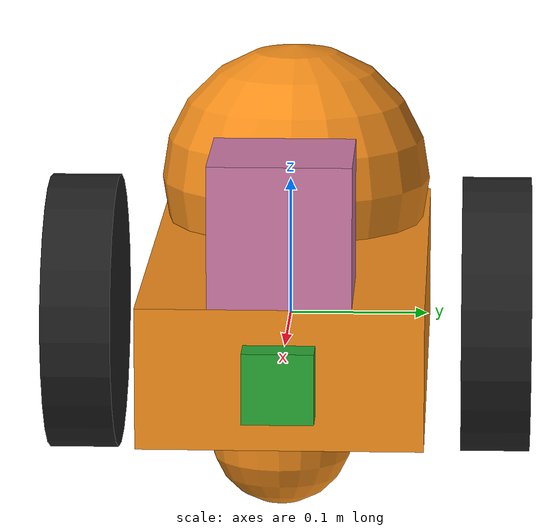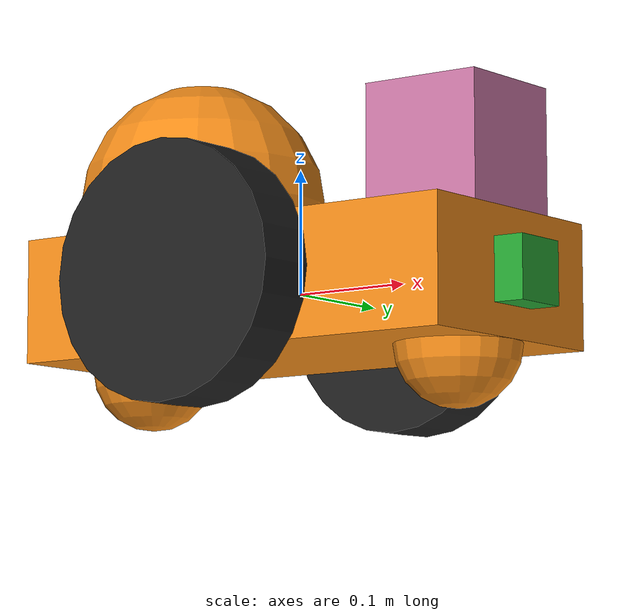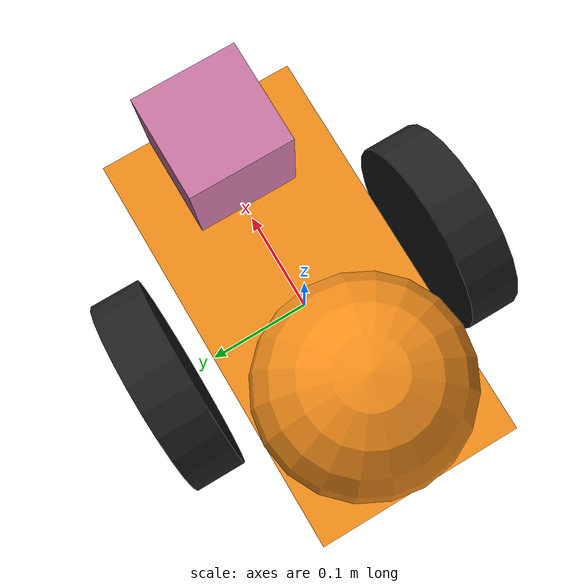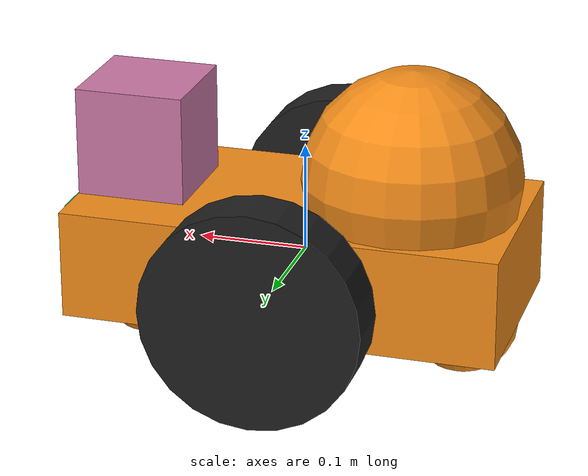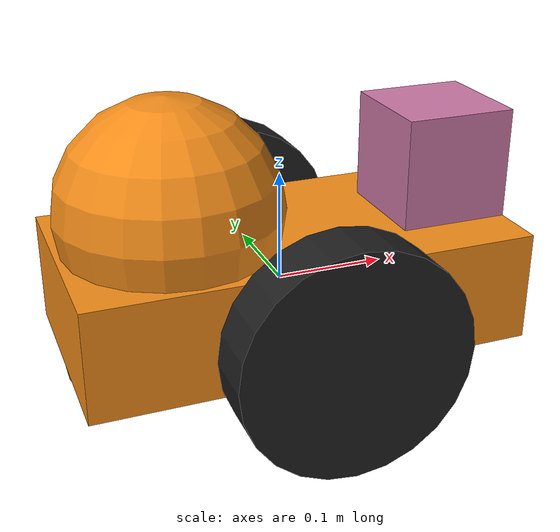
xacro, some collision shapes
<?xml version="1.0"?>
<robot name="my_robot"
  xmlns:xacro="http://www.ros.org/wiki/xacro">

  <xacro:include filename="$(find my_robot)/urdf/my_robot.gazebo" />

  <link name="robot_footprint">
  </link>

  <joint name="robot_footprint_joint" type="fixed">
    <origin xyz="0 0 0" rpy="0 0 0" />
    <parent link="robot_footprint" />
    <child link="chassis" />
  </joint>

  <link name='chassis'>
    <pose>0 0 0.1 0 0 0</pose>

    <inertial>
      <mass value="15.0" />
      <origin xyz="0.0 0 0" rpy=" 0 0 0" />
      <inertia ixx="0.1" ixy="0" ixz="0" iyy="0.1" iyz="0" izz="0.1" />
    </inertial>

    <collision name='collision'>
      <origin xyz="0 0 0" rpy=" 0 0 0" />
      <geometry>
        <box size=".4 .2 .1" />
      </geometry>
    </collision>

    <visual name='chassis_visual'>
      <origin xyz="0 0 0" rpy=" 0 0 0" />
      <geometry>
        <box size=".4 .2 .1" />
      </geometry>
    </visual>

    <collision name='back_caster_collision'>
      <origin xyz="-0.15 0 -0.05" rpy=" 0 0 0" />
      <geometry>
        <sphere radius="0.0499" />
      </geometry>
    </collision>

    <visual name='back_caster_visual'>
      <origin xyz="-0.15 0 -0.05" rpy=" 0 0 0" />
      <geometry>
        <sphere radius="0.05" />
      </geometry>
    </visual>

    <collision name='front_caster_collision'>
      <origin xyz="0.15 0 -0.05" rpy=" 0 0 0" />
      <geometry>
        <sphere radius="0.0499" />
      </geometry>
    </collision>

    <visual name='front_caster_visual'>
      <origin xyz="0.15 0 -0.05" rpy=" 0 0 0" />
      <geometry>
        <sphere radius="0.05" />
      </geometry>
    </visual>

    <collision name='top_caster_collision'>
      <origin xyz="-0.1 0 0.08" rpy=" 0 0 0" />
      <geometry>
        <sphere radius="0.1" />
      </geometry>
    </collision>

    <visual name='top_caster_visual'>
      <origin xyz="-0.1 0 0.08" rpy=" 0 0 0" />
      <geometry>
        <sphere radius="0.1" />
      </geometry>
    </visual>

  </link>

  <!-- left wheel -->

  <joint type="continuous" name="left_wheel_hinge">
    <origin xyz="0 0.15 0" rpy="0 0 0" />
    <child link="left_wheel" />
    <parent link="chassis" />
    <axis xyz="0 1 0" rpy="0 0 0" />
    <limit effort="10000" velocity="1000" />
    <dynamics damping="1.0" friction="1.0" />
  </joint>

  <link name="left_wheel">
    <inertial>
      <mass value="5.0" />
      <origin xyz="0 0 0" rpy="0 1.5707 1.5707" />
      <inertia ixx="0.1" ixy="0" ixz="0" iyy="0.1" iyz="0" izz="0.1" />
    </inertial>
    <collision name='collision'>
      <origin xyz="0 0 0" rpy=" 0 1.5707 1.5707" />
      <geometry>
        <cylinder radius="0.1" length="0.05" />
      </geometry>
    </collision>
    <visual name="left_wheel_visual">
      <origin xyz="0 0 0" rpy="0 1.5707 1.5707" />
      <geometry>
        <cylinder radius="0.1" length="0.05" />
      </geometry>
    </visual>
  </link>

  <!-- right wheel -->

  <joint type="continuous" name="right_wheel_hinge">
    <origin xyz="0 -0.15 0" rpy="0 0 0" />
    <child link="right_wheel" />
    <parent link="chassis" />
    <axis xyz="0 1 0" rpy="0 0 0" />
    <limit effort="10000" velocity="1000" />
    <dynamics damping="1.0" friction="1.0" />
  </joint>

  <link name="right_wheel">
    <inertial>
      <mass value="5.0" />
      <origin xyz="0.0 0 0" rpy=" 0 1.5707 1.5707" />
      <inertia ixx="0.1" ixy="0" ixz="0" iyy="0.1" iyz="0" izz="0.1" />
    </inertial>
    <collision name='collision'>
      <origin xyz="0 0 0" rpy=" 0 1.5707 1.5707" />
      <geometry>
        <cylinder radius="0.1" length="0.05" />
      </geometry>
    </collision>
    <visual name="right_wheel_visual">
      <origin xyz="0 0 0" rpy="0 1.5707 1.5707" />
      <geometry>
        <cylinder radius="0.1" length="0.05" />
      </geometry>
    </visual>
  </link>

  <!-- camera -->

  <link name="camera">
    <inertial>
      <mass value="0.1" />
      <origin xyz="0 0 0" rpy="0 0 0" />
      <inertia ixx="1e-6" ixy="0" ixz="0" iyy="1e-6" iyz="0" izz="1e-6" />
    </inertial>
    <collision name="collision">
      <origin xyz="0 0 0" rpy="0 0 0" />
      <geometry>
        <box size="0.05 0.05 0.05" />
      </geometry>
    </collision>
    <visual name="camera_visual">
      <origin xyz="0 0 0" rpy="0 0 0" />
      <geometry>
        <box size="0.05 0.05 0.05" />
      </geometry>
    </visual>
  </link>
  <joint type="fixed" name="camera_joint">
    <origin xyz="0.2 0 0" rpy="0 0 0" />
    <child link="camera" />
    <parent link="chassis" />
    <axis xyz="0 1 0" rpy="0 0 0" />
    <limit effort="10000" velocity="1000" />
    <dynamics damping="1.0" friction="1.0" />
  </joint>

  <!-- RGB-D camera -->

  <link name="camera_link_optical">
  </link>
  <joint name="camera_optical_joint" type="fixed">
    <origin xyz="0 0 0" rpy="-1.5707 0 -1.5707"/>
    <parent link="camera"/>
    <child link="camera_link_optical"/>
    <axis xyz="0 1 0" rpy="0 0 0" />
    <limit effort="10000" velocity="1000" />
    <dynamics damping="1.0" friction="1.0" />
  </joint>

  <!-- lidar -->

  <link name="hokuyo">
    <inertial>
      <mass value="1e-5" />
      <origin xyz="0 0 0" rpy="0 0 0" />
      <inertia ixx="1e-6" ixy="0" ixz="0" iyy="1e-6" iyz="0" izz="1e-6" />
    </inertial>
    <collision name="collision">
      <origin xyz="0 0 0" rpy="0 0 0" />
      <geometry>
        <box size="0.1 0.1 0.1" />
      </geometry>
    </collision>
    <visual name="hokuyo_visual">
      <origin xyz="0 0 0" rpy="0 0 0" />
      <geometry>
        <mesh filename="package://my_robot/meshes/hokuyo.dae" />
      </geometry>
    </visual>
  </link>
  <joint type="fixed" name="hokuyo_joint">
    <origin xyz="0.15 0 0.1" rpy="0 0 0" />
    <child link="hokuyo" />
    <parent link="chassis" />
    <axis xyz="0 1 0" rpy="0 0 0" />
    <limit effort="10000" velocity="1000" />
    <dynamics damping="1.0" friction="1.0" />
  </joint>

  <!-- colors -->

  <gazebo reference="left_wheel">
    <material>Gazebo/Black</material>
  </gazebo>

  <gazebo reference="right_wheel">
    <material>Gazebo/Black</material>
  </gazebo>

  <gazebo reference="chassis">
    <material>Gazebo/Orange</material>
  </gazebo>

  <gazebo reference="camera">
    <material>Gazebo/Green</material>
  </gazebo>

  <gazebo reference="camera_link_optical">
    <material>Gazebo/Green</material>
  </gazebo>
</robot>
